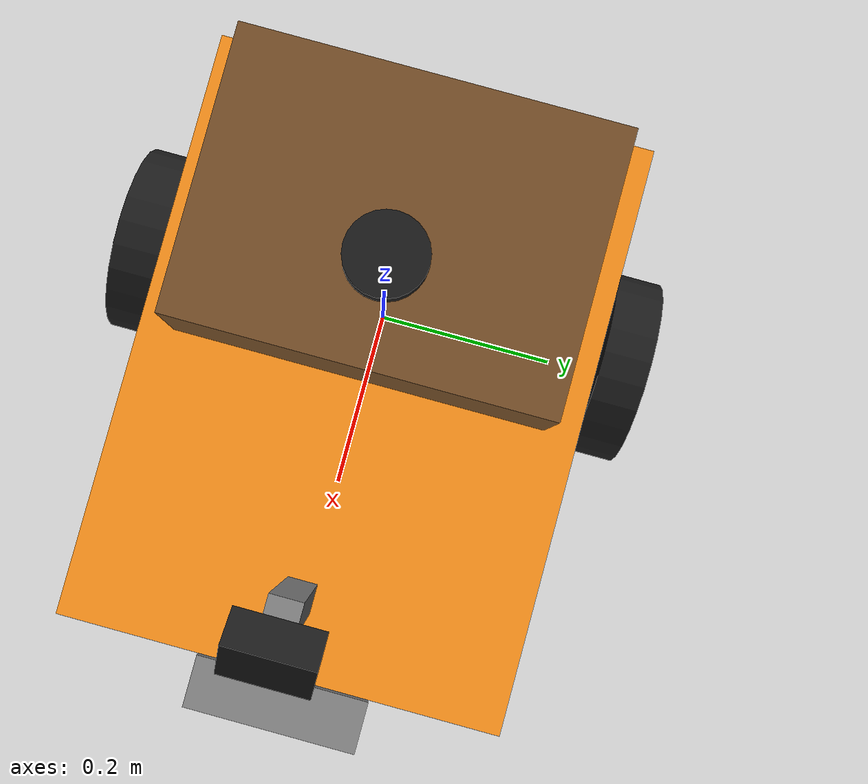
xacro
<?xml version="1.0"?>
<robot name="applepic" xmlns:xacro="http://www.ros.org/wiki/xacro">

  <!-- Chassis -->
  <xacro:property name="base_length" value="0.60"/>
  <xacro:property name="base_width" value="0.45"/>
  <xacro:property name="base_height" value="0.15"/>
  <xacro:property name="base_mass" value="12.0"/>
  <!-- above the apples (8 cm tall): the chassis drives over them instead of pushing them -->
  <xacro:property name="ground_clearance" value="0.10"/>

  <!-- Drive wheels, 10 cm behind the chassis centre. base_footprint/base_link sit on the wheel
       axis (rotation centre), so the chassis box is offset forward by chassis_x. -->
  <xacro:property name="wheel_radius" value="0.10"/>
  <xacro:property name="wheel_width" value="0.05"/>
  <xacro:property name="wheel_mass" value="1.0"/>
  <xacro:property name="wheel_separation" value="0.52"/>
  <xacro:property name="chassis_x" value="0.10"/>

  <!-- Caster (frictionless sphere) at the front -->
  <xacro:property name="caster_radius" value="0.05"/>
  <xacro:property name="caster_x" value="0.32"/>

  <!-- Camera on a mast at the front, tilted towards the ground -->
  <xacro:property name="camera_x" value="0.35"/>
  <xacro:property name="camera_z" value="0.50"/>
  <xacro:property name="camera_pitch" value="0.85"/>
  <xacro:property name="camera_hfov" value="1.3"/>
  <xacro:property name="camera_width" value="640"/>
  <xacro:property name="camera_height" value="480"/>
  <xacro:property name="camera_rate" value="10"/>

  <!-- Gripper: point in front of the chassis, a few cm above ground -->
  <xacro:property name="gripper_x" value="0.46"/>
  <xacro:property name="gripper_z" value="0.04"/>

  <!-- GPS antenna above the wheel axis (rotation centre): no horizontal lever arm. The gz fix is
       perfect; the GPS error model is applied by the gps_noise node (metres, seeded). -->
  <xacro:property name="gps_z" value="0.40"/>
  <xacro:property name="gps_rate" value="10"/>
  <!-- IMU gyro (yaw rate for the heading: the wheels slip when pivoting): white noise and a
       constant bias drawn at start (gz noise, seeded by the gz sim seed option). -->
  <xacro:property name="imu_rate" value="50"/>
  <xacro:property name="gyro_noise" value="0.005"/>
  <xacro:property name="gyro_bias_stddev" value="0.0005"/>

  <xacro:property name="base_z" value="${ground_clearance + base_height / 2}"/>

  <xacro:macro name="box_inertia" params="m x y z">
    <inertia ixx="${m * (y*y + z*z) / 12}" ixy="0" ixz="0"
             iyy="${m * (x*x + z*z) / 12}" iyz="0"
             izz="${m * (x*x + y*y) / 12}"/>
  </xacro:macro>

  <material name="body_orange"><color rgba="0.95 0.55 0.1 1"/></material>
  <material name="black"><color rgba="0.1 0.1 0.1 1"/></material>
  <material name="grey"><color rgba="0.5 0.5 0.5 1"/></material>
  <material name="basket_brown"><color rgba="0.45 0.3 0.15 1"/></material>

  <link name="base_footprint"/>

  <link name="base_link">
    <visual>
      <origin xyz="${chassis_x} 0 0"/>
      <geometry><box size="${base_length} ${base_width} ${base_height}"/></geometry>
      <material name="body_orange"/>
    </visual>
    <collision>
      <origin xyz="${chassis_x} 0 0"/>
      <geometry><box size="${base_length} ${base_width} ${base_height}"/></geometry>
    </collision>
    <!-- Bumper strip, wider than the wheels so that a trunk touches it first -->
    <collision name="bumper_strip">
      <origin xyz="${chassis_x} 0 0"/>
      <geometry><box size="${base_length} ${wheel_separation + wheel_width + 0.04} 0.04"/></geometry>
    </collision>
    <inertial>
      <origin xyz="${chassis_x} 0 0"/>
      <mass value="${base_mass}"/>
      <xacro:box_inertia m="${base_mass}" x="${base_length}" y="${base_width}" z="${base_height}"/>
    </inertial>
  </link>

  <joint name="base_joint" type="fixed">
    <parent link="base_footprint"/>
    <child link="base_link"/>
    <origin xyz="0 0 ${base_z}" rpy="0 0 0"/>
  </joint>

  <xacro:macro name="wheel" params="side y_sign">
    <link name="${side}_wheel_link">
      <visual>
        <origin rpy="${pi/2} 0 0"/>
        <geometry><cylinder radius="${wheel_radius}" length="${wheel_width}"/></geometry>
        <material name="black"/>
      </visual>
      <collision>
        <origin rpy="${pi/2} 0 0"/>
        <geometry><cylinder radius="${wheel_radius}" length="${wheel_width}"/></geometry>
      </collision>
      <inertial>
        <mass value="${wheel_mass}"/>
        <inertia ixx="${wheel_mass * (3*wheel_radius*wheel_radius + wheel_width*wheel_width) / 12}"
                 ixy="0" ixz="0"
                 iyy="${wheel_mass * wheel_radius * wheel_radius / 2}" iyz="0"
                 izz="${wheel_mass * (3*wheel_radius*wheel_radius + wheel_width*wheel_width) / 12}"/>
      </inertial>
    </link>
    <joint name="${side}_wheel_joint" type="continuous">
      <parent link="base_link"/>
      <child link="${side}_wheel_link"/>
      <origin xyz="0 ${y_sign * wheel_separation / 2} ${wheel_radius - base_z}" rpy="0 0 0"/>
      <axis xyz="0 1 0"/>
    </joint>
    <gazebo reference="${side}_wheel_link">
      <mu1>1.0</mu1>
      <mu2>1.0</mu2>
      <collision><surface><contact><collide_bitmask>0x01</collide_bitmask></contact></surface></collision>
    </gazebo>
  </xacro:macro>

  <xacro:wheel side="left" y_sign="1"/>
  <xacro:wheel side="right" y_sign="-1"/>

  <link name="caster_link">
    <visual>
      <geometry><sphere radius="${caster_radius}"/></geometry>
      <material name="grey"/>
    </visual>
    <collision>
      <geometry><sphere radius="${caster_radius}"/></geometry>
    </collision>
    <inertial>
      <mass value="0.3"/>
      <inertia ixx="0.0003" ixy="0" ixz="0" iyy="0.0003" iyz="0" izz="0.0003"/>
    </inertial>
  </link>
  <joint name="caster_joint" type="fixed">
    <parent link="base_link"/>
    <child link="caster_link"/>
    <origin xyz="${caster_x} 0 ${caster_radius - base_z}"/>
  </joint>
  <gazebo reference="caster_link">
    <mu1>0.0</mu1>
    <mu2>0.0</mu2>
    <!-- Wheels and caster drive over the apples (mask 0x02): colliding, they launch them tens of metres. -->
    <collision><surface><contact><collide_bitmask>0x01</collide_bitmask></contact></surface></collision>
  </gazebo>

  <!-- Basket on the rear half of the chassis (visual only: apples are counted, not stored) -->
  <link name="basket_link">
    <visual>
      <geometry><box size="0.28 0.38 0.12"/></geometry>
      <material name="basket_brown"/>
    </visual>
  </link>
  <joint name="basket_joint" type="fixed">
    <parent link="base_link"/>
    <child link="basket_link"/>
    <origin xyz="${chassis_x - 0.14} 0 ${base_height / 2 + 0.06}"/>
  </joint>

  <!-- Camera mast -->
  <link name="mast_link">
    <visual>
      <geometry><box size="0.03 0.03 ${camera_z - base_z - base_height / 2}"/></geometry>
      <material name="grey"/>
    </visual>
  </link>
  <joint name="mast_joint" type="fixed">
    <parent link="base_link"/>
    <child link="mast_link"/>
    <origin xyz="${camera_x - 0.03} 0 ${base_height / 2 + (camera_z - base_z - base_height / 2) / 2}"/>
  </joint>

  <!-- camera_link: x forward (gz convention), pitched down -->
  <link name="camera_link">
    <visual>
      <geometry><box size="0.04 0.08 0.04"/></geometry>
      <material name="black"/>
    </visual>
  </link>
  <joint name="camera_joint" type="fixed">
    <parent link="base_footprint"/>
    <child link="camera_link"/>
    <origin xyz="${camera_x} 0 ${camera_z}" rpy="0 ${camera_pitch} 0"/>
  </joint>

  <!-- ROS optical frame: z forward, x right, y down -->
  <link name="camera_optical_frame"/>
  <joint name="camera_optical_joint" type="fixed">
    <parent link="camera_link"/>
    <child link="camera_optical_frame"/>
    <origin rpy="${-pi/2} 0 ${-pi/2}"/>
  </joint>

  <!-- "Magic" gripper: apples within a few cm of this frame get picked -->
  <link name="gripper_link">
    <visual>
      <geometry><box size="0.06 0.20 0.02"/></geometry>
      <material name="grey"/>
    </visual>
  </link>
  <joint name="gripper_joint" type="fixed">
    <parent link="base_footprint"/>
    <child link="gripper_link"/>
    <origin xyz="${gripper_x} 0 ${gripper_z}"/>
  </joint>

  <link name="gps_link">
    <visual>
      <geometry><cylinder radius="0.04" length="0.02"/></geometry>
      <material name="black"/>
    </visual>
  </link>
  <joint name="gps_joint" type="fixed">
    <parent link="base_footprint"/>
    <child link="gps_link"/>
    <origin xyz="0 0 ${gps_z}"/>
  </joint>

  <gazebo reference="gps_link">
    <sensor name="navsat" type="navsat">
      <always_on>true</always_on>
      <update_rate>${gps_rate}</update_rate>
      <topic>gps/raw</topic>
      <gz_frame_id>gps_link</gz_frame_id>
    </sensor>
  </gazebo>

  <link name="imu_link"/>
  <joint name="imu_joint" type="fixed">
    <parent link="base_link"/>
    <child link="imu_link"/>
  </joint>

  <gazebo reference="imu_link">
    <sensor name="imu" type="imu">
      <always_on>true</always_on>
      <update_rate>${imu_rate}</update_rate>
      <topic>imu</topic>
      <gz_frame_id>imu_link</gz_frame_id>
      <imu>
        <angular_velocity>
          <z>
            <noise type="gaussian">
              <mean>0</mean>
              <stddev>${gyro_noise}</stddev>
              <bias_mean>0</bias_mean>
              <bias_stddev>${gyro_bias_stddev}</bias_stddev>
            </noise>
          </z>
        </angular_velocity>
      </imu>
    </sensor>
  </gazebo>

  <gazebo reference="camera_link">
    <sensor name="camera" type="camera">
      <always_on>true</always_on>
      <update_rate>${camera_rate}</update_rate>
      <topic>camera/image_raw</topic>
      <gz_frame_id>camera_optical_frame</gz_frame_id>
      <camera>
        <camera_info_topic>camera/camera_info</camera_info_topic>
        <horizontal_fov>${camera_hfov}</horizontal_fov>
        <image>
          <width>${camera_width}</width>
          <height>${camera_height}</height>
          <format>R8G8B8</format>
        </image>
        <clip><near>0.05</near><far>30</far></clip>
      </camera>
    </sensor>
  </gazebo>

  <gazebo reference="base_link">
    <sensor name="chassis_bumper" type="contact">
      <always_on>1</always_on>
      <update_rate>20</update_rate>
      <contact>
        <collision>base_footprint_fixed_joint_lump__base_link_collision</collision>
        <collision>base_footprint_fixed_joint_lump__bumper_strip_collision_1</collision>
        <topic>/bumper</topic>
      </contact>
    </sensor>
  </gazebo>

  <gazebo>
    <plugin filename="gz-sim-diff-drive-system" name="gz::sim::systems::DiffDrive">
      <left_joint>left_wheel_joint</left_joint>
      <right_joint>right_wheel_joint</right_joint>
      <wheel_separation>${wheel_separation}</wheel_separation>
      <wheel_radius>${wheel_radius}</wheel_radius>
      <max_linear_velocity>1.0</max_linear_velocity>
      <max_angular_velocity>2.0</max_angular_velocity>
      <max_linear_acceleration>1.0</max_linear_acceleration>
      <max_angular_acceleration>3.0</max_angular_acceleration>
      <topic>cmd_vel</topic>
      <odom_topic>wheel_odom</odom_topic>
      <frame_id>odom</frame_id>
      <child_frame_id>base_footprint</child_frame_id>
      <odom_publish_frequency>20</odom_publish_frequency>
      <tf_topic>wheel_odom/tf</tf_topic>
    </plugin>
    <!-- Ground-truth odometry (world pose of the robot), used for navigation until GPS (M9) -->
    <plugin filename="gz-sim-odometry-publisher-system" name="gz::sim::systems::OdometryPublisher">
      <odom_frame>odom</odom_frame>
      <robot_base_frame>base_footprint</robot_base_frame>
      <odom_topic>odom</odom_topic>
      <tf_topic>odom/tf</tf_topic>
      <odom_publish_frequency>30</odom_publish_frequency>
      <dimensions>2</dimensions>
    </plugin>
    <plugin filename="gz-sim-joint-state-publisher-system" name="gz::sim::systems::JointStatePublisher">
      <topic>joint_states</topic>
    </plugin>
  </gazebo>
</robot>
